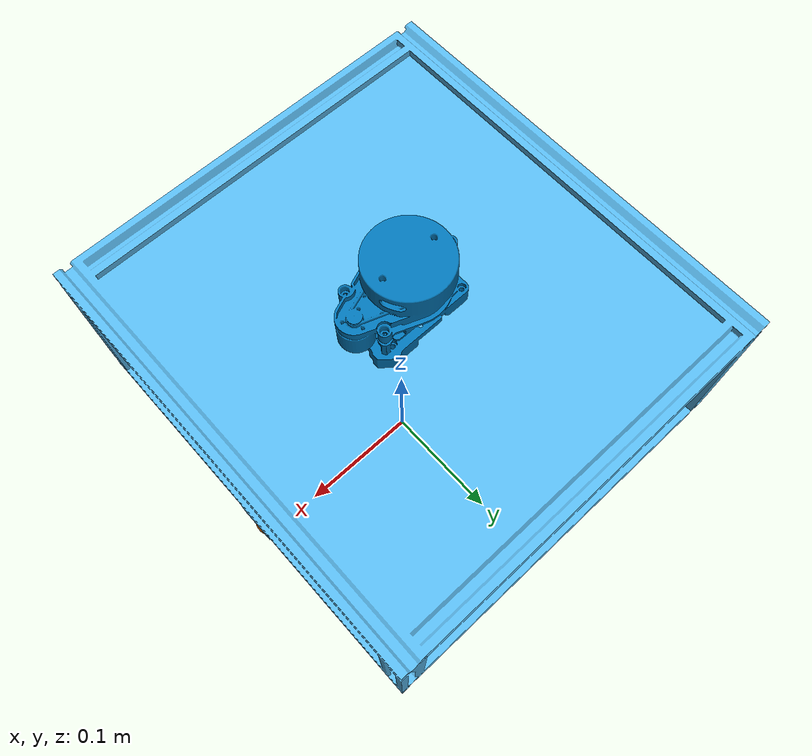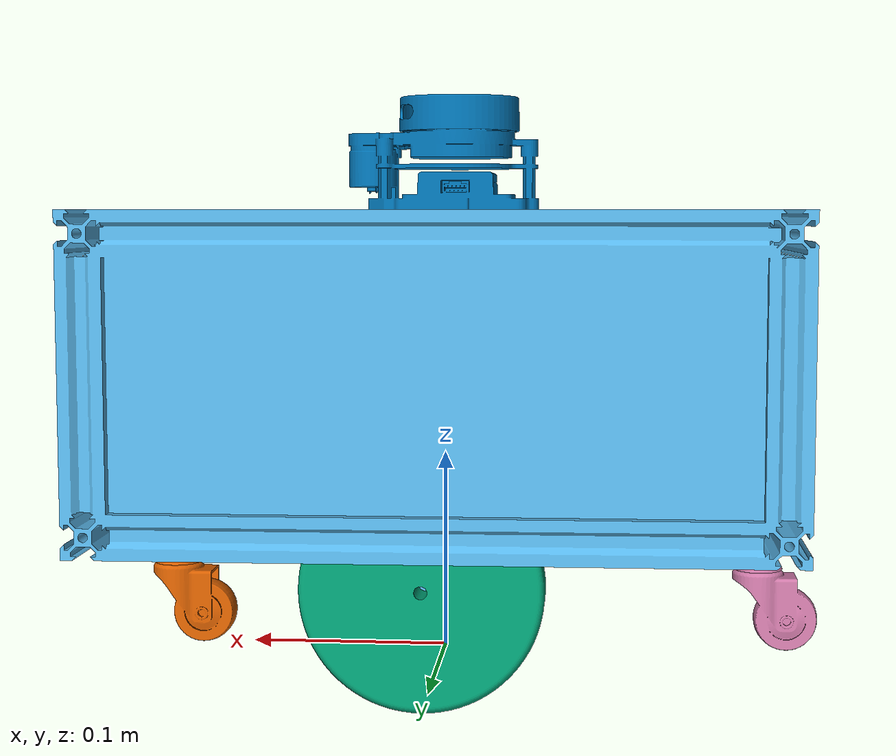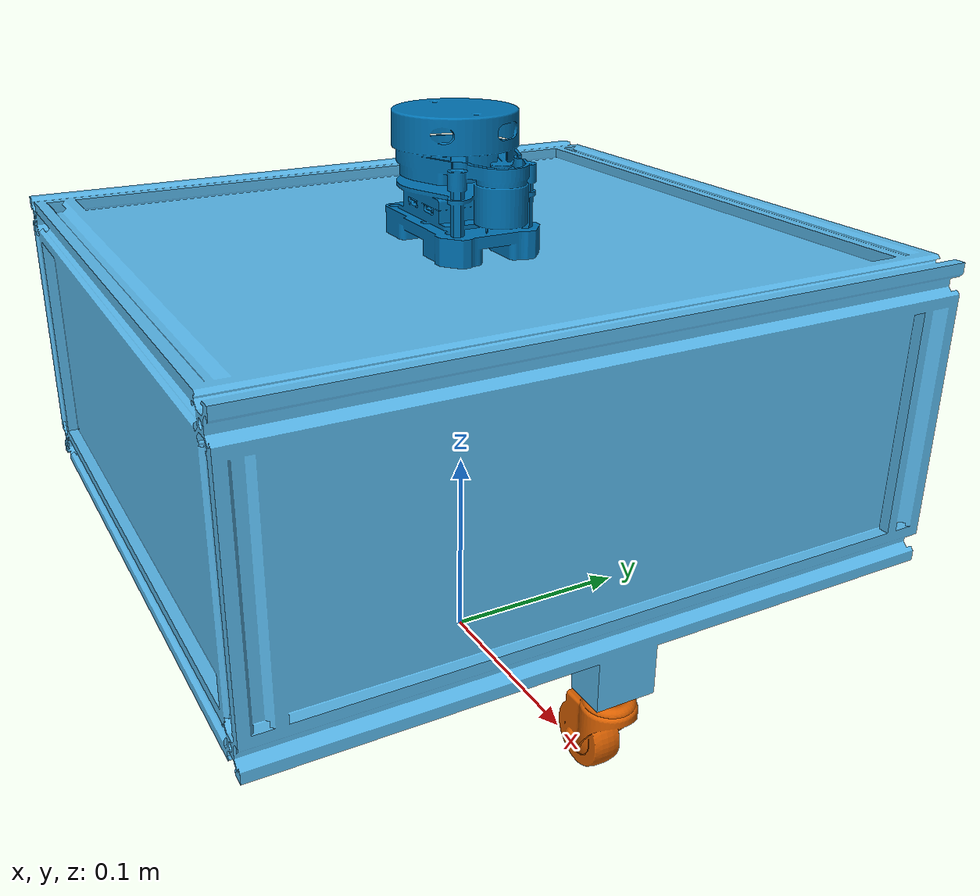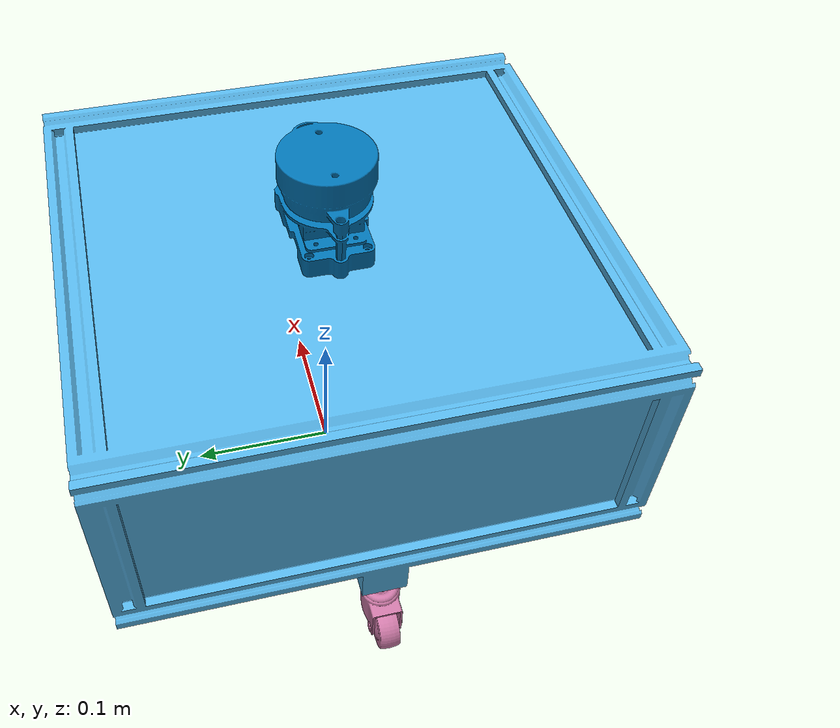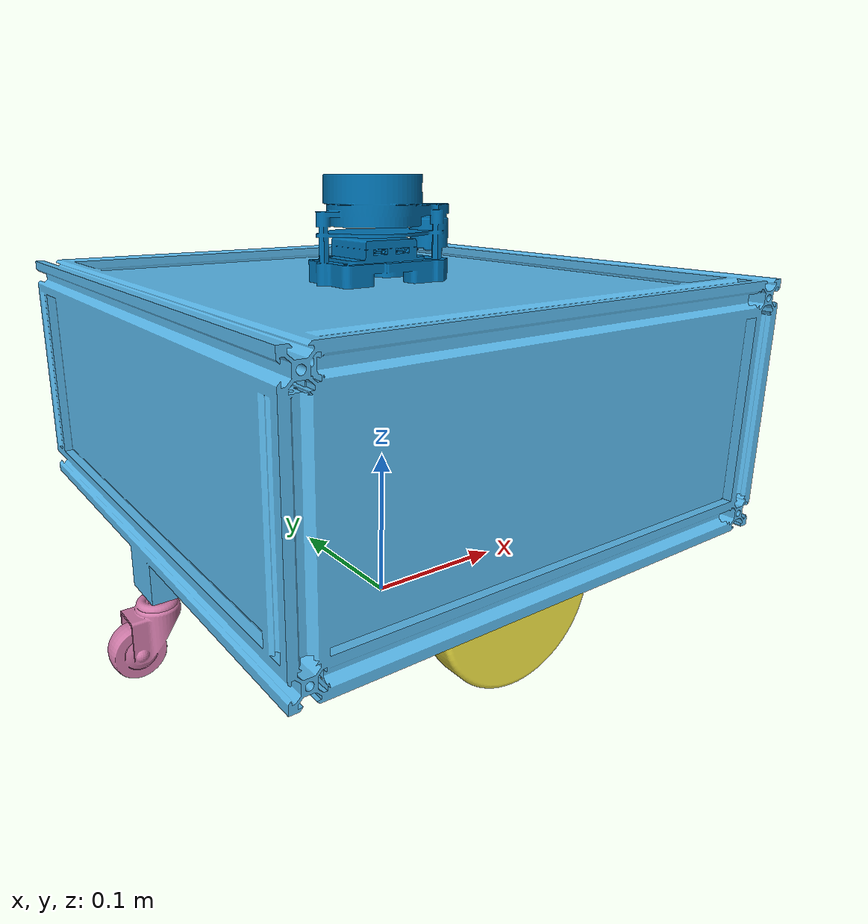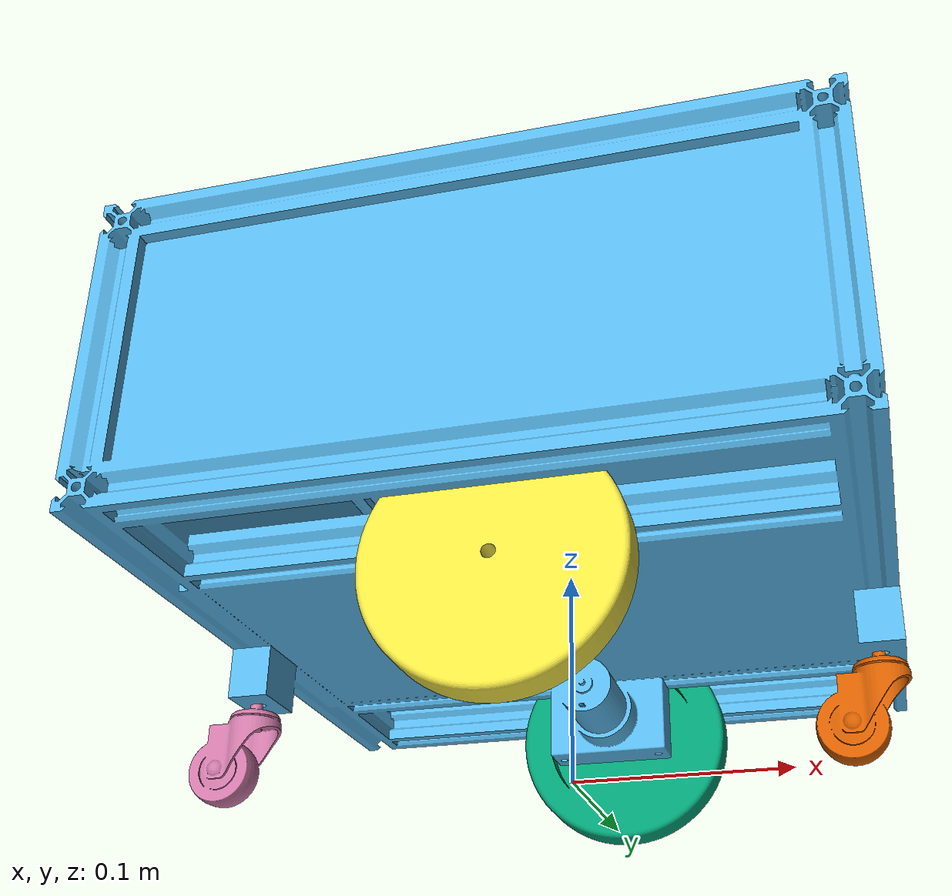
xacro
<?xml version="1.0"?>
<robot name="leo">

  <!-- ================= BASE FOOTPRINT ================= -->
  <link name="base_footprint"/>

  <!-- ================= BASE LINK ================= -->
  <link name="base_link">

    <visual>
      <!-- Shift mesh down by half box height -->
      <origin xyz="0 0 -0.055"/>
      <geometry>
        <mesh filename="package://leo/meshes/base_link.stl"
              scale="0.001 0.001 0.001"/>
      </geometry>
    </visual>

    <collision>
      <origin xyz="0 0 -0.055"/>
      <geometry>
        <box size="0.45 0.35 0.15"/>
      </geometry>
    </collision>

    <inertial>
      <origin xyz="0 0 0"/>
      <mass value="12.0"/>
      <inertia ixx="0.25" iyy="0.35" izz="0.45"
               ixy="0.0" ixz="0.0" iyz="0.0"/>
    </inertial>

  </link>

  <joint name="base_joint" type="fixed">
    <parent link="base_footprint"/>
    <child link="base_link"/>
    <origin xyz="0 0 0.055"/>
  </joint>

  <!-- ================= LEFT WHEEL ================= -->
  <link name="wheel_left_link">

    <!-- VISUAL = MESH -->
    <visual>
      <!-- If the wheel mesh looks rotated, try rpy="1.5708 0 0" here -->
      <origin xyz="0 0 0" rpy="0 0 0"/>
      <geometry>
        <mesh filename="package://leo/meshes/wheel_left_link.stl"
              scale="0.001 0.001 0.001"/>
      </geometry>
    </visual>

    <!-- COLLISION = SIMPLE (recommended for Gazebo) -->
    <collision>
      <origin rpy="1.5708 0 0"/>
      <geometry>
        <cylinder radius="0.055" length="0.03"/>
      </geometry>
    </collision>

    <inertial>
      <mass value="1.0"/>
      <inertia ixx="0.001" iyy="0.001" izz="0.001"
               ixy="0.0" ixz="0.0" iyz="0.0"/>
    </inertial>

  </link>

  <joint name="wheel_left_joint" type="continuous">
    <parent link="base_link"/>
    <child link="wheel_left_link"/>
    <origin xyz="0 0.135 0"/>
    <axis xyz="0 1 0"/>
  </joint>

  <!-- ================= RIGHT WHEEL ================= -->
  <link name="wheel_right_link">

    <!-- VISUAL = MESH -->
    <visual>
      <!-- If the wheel mesh looks rotated, try rpy="1.5708 0 0" here -->
      <origin xyz="0 0 0" rpy="0 0 0"/>
      <geometry>
        <mesh filename="package://leo/meshes/wheel_right_link.stl"
              scale="0.001 0.001 0.001"/>
      </geometry>
    </visual>

    <!-- COLLISION = SIMPLE -->
    <collision>
      <origin rpy="1.5708 0 0"/>
      <geometry>
        <cylinder radius="0.055" length="0.03"/>
      </geometry>
    </collision>

    <inertial>
      <mass value="1.0"/>
      <inertia ixx="0.001" iyy="0.001" izz="0.001"
               ixy="0.0" ixz="0.0" iyz="0.0"/>
    </inertial>

  </link>

  <joint name="wheel_right_joint" type="continuous">
    <parent link="base_link"/>
    <child link="wheel_right_link"/>
    <origin xyz="0 -0.135 0"/>
    <axis xyz="0 1 0"/>
  </joint>

  <!-- ================= LIDAR ================= -->
  <link name="lidar_link">

    <!-- VISUAL = MESH -->
    <visual>
      <origin xyz="0 0 0" rpy="0 0 0"/>
      <geometry>
        <mesh filename="package://leo/meshes/lidar_link.stl"
              scale="0.001 0.001 0.001"/>
      </geometry>
    </visual>

    <!-- COLLISION = SIMPLE -->
    <collision>
      <geometry>
        <cylinder radius="0.04" length="0.06"/>
      </geometry>
    </collision>

  </link>

  <joint name="lidar_joint" type="fixed">
    <parent link="base_link"/>
    <child link="lidar_link"/>
    <origin xyz="0 0 0.169"/>
  </joint>

  <!-- ================= FRONT CASTER ================= -->
  <link name="caster_front_link">

    <!-- VISUAL = MESH -->
    <visual>
      <origin xyz="0 0 0" rpy="0 0 0"/>
      <geometry>
        <mesh filename="package://leo/meshes/caster_front_link.stl"
              scale="0.001 0.001 0.001"/>
      </geometry>
    </visual>

    <!-- COLLISION = SIMPLE -->
    <collision>
      <geometry>
        <sphere radius="0.03"/>
      </geometry>
    </collision>

  </link>

  <joint name="caster_front_joint" type="fixed">
    <parent link="base_link"/>
    <child link="caster_front_link"/>
    <origin xyz="0.14 0 -0.055"/>
  </joint>

  <!-- ================= BACK CASTER ================= -->
  <link name="caster_back_link">

    <!-- VISUAL = MESH -->
    <visual>
      <origin xyz="0 0 0" rpy="0 0 0"/>
      <geometry>
        <mesh filename="package://leo/meshes/caster_back_link.stl"
              scale="0.001 0.001 0.001"/>
      </geometry>
    </visual>

    <!-- COLLISION = SIMPLE -->
    <collision>
      <geometry>
        <sphere radius="0.03"/>
      </geometry>
    </collision>

  </link>

  <joint name="caster_back_joint" type="fixed">
    <parent link="base_link"/>
    <child link="caster_back_link"/>
    <origin xyz="-0.16 0 -0.055"/>
  </joint>

  <!-- ================= GAZEBO DIFF DRIVE ================= -->
  <gazebo>
    <plugin name="diff_drive" filename="libgazebo_ros_diff_drive.so">
      <left_joint>wheel_left_joint</left_joint>
      <right_joint>wheel_right_joint</right_joint>
      <wheel_separation>0.27</wheel_separation>
      <wheel_radius>0.055</wheel_radius>
      <cmd_vel_topic>cmd_vel</cmd_vel_topic>
      <odom_topic>odom</odom_topic>
      <publish_tf>true</publish_tf>
    </plugin>
  </gazebo>

  <!-- ================= GAZEBO LIDAR ================= -->
  <gazebo reference="lidar_link">
    <sensor type="ray" name="lidar">
      <update_rate>10</update_rate>
      <ray>
        <scan>
          <horizontal>
            <samples>360</samples>
            <min_angle>-3.1416</min_angle>
            <max_angle>3.1416</max_angle>
          </horizontal>
        </scan>
        <range>
          <min>0.12</min>
          <max>10.0</max>
        </range>
      </ray>
      <plugin name="gazebo_ros_ray" filename="libgazebo_ros_ray_sensor.so">
        <topicName>scan</topicName>
        <frameName>lidar_link</frameName>
      </plugin>
    </sensor>
  </gazebo>

</robot>
